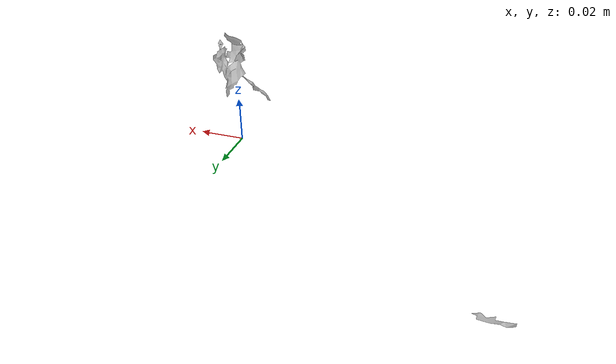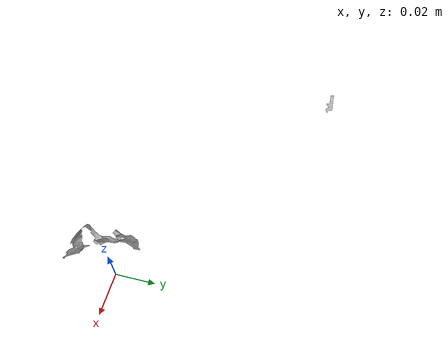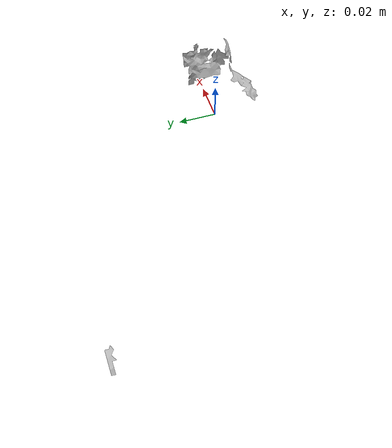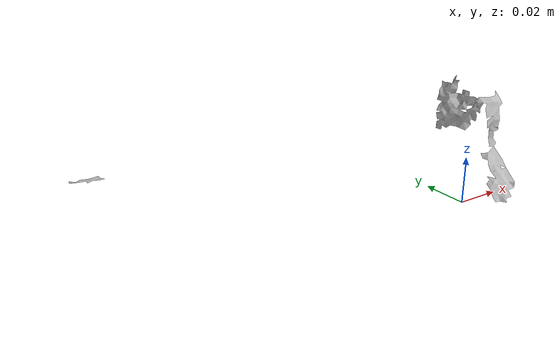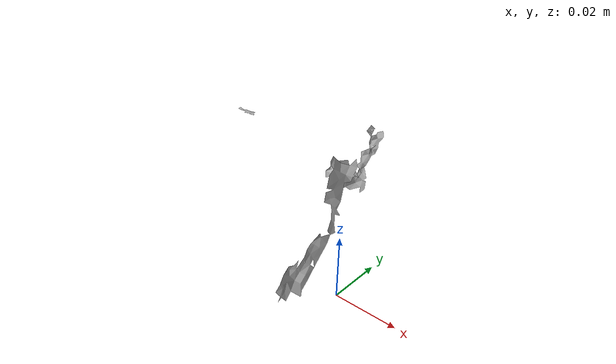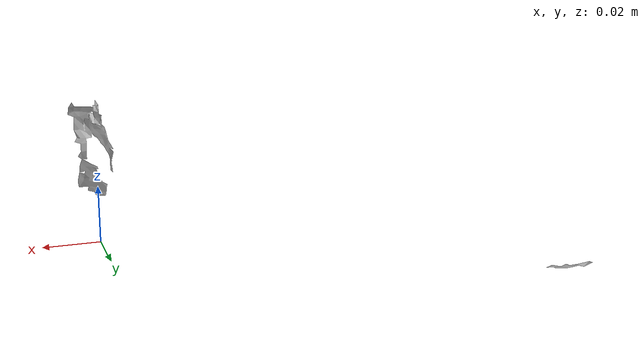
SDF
<?xml version='1.0'?>
<sdf version="1.4">
  <model name="049_small_clamp">
    <static>false</static>
    <link name="link">
      <inertial>
        <pose>-0.040544862557880576 0.026721203478068417 0.02580618959959682 -1.758888054612011 0.6231334513033772 0.8433075853669234</pose>
        <mass>0.005532559371977295</mass>
        <inertia>
          <ixx>9.197170840047297e-06</ixx>
          <ixy>1.246294090529798e-21</ixy>
          <ixz>1.7400402821709e-21</ixz>
          <iyy>8.727368065206813e-06</iyy>
          <iyz>-1.4087733244958777e-21</iyz>
          <izz>6.291228894556927e-07</izz>
        </inertia>
      </inertial>
      <collision name="collision">
        <geometry>
          <mesh>
            <!-- Use a downsampled mesh for collisions -->
            <uri>model:///049_small_clamp/049_small_clamp_250_collision.stl</uri>
	        </mesh>
        </geometry>
        <surface>
      </surface>
      </collision>
      <visual name="visual">
        <geometry>
          <mesh>
            <uri>model:///049_small_clamp/textured.obj</uri>
	        </mesh>
        </geometry>
        <material>
          <script>
            <uri>model:///049_small_clamp/049_small_clamp.material</uri>
            <name>049_small_clamp</name>
          </script>
        </material>
      </visual>
    </link>
  </model>
</sdf>
